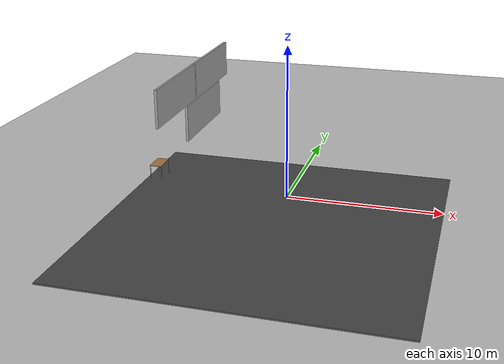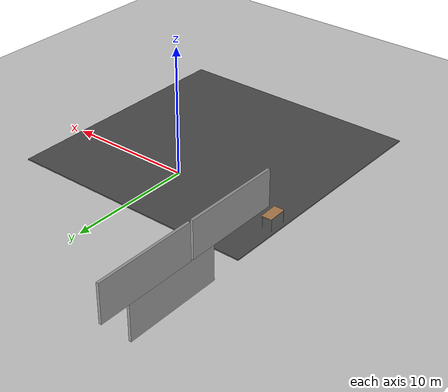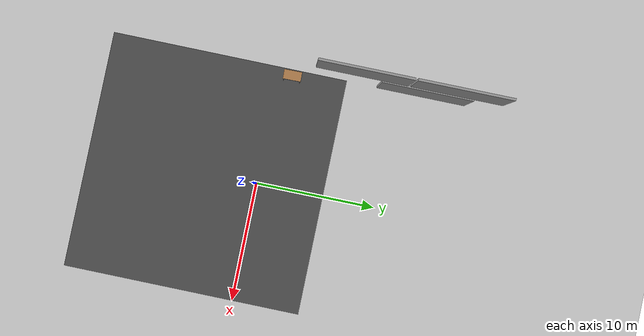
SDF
<sdf version="1.6">
 <world name="default">
  <model name="asphalt_plane">
   <static>1</static>
   <link name="link">
    <collision name="collision"><geometry><box><size>20 20 0.1</size></box></geometry></collision>
    <visual name="visual">
     <cast_shadows>0</cast_shadows>
     <geometry><box><size>20 20 0.1</size></box></geometry>
     <material>
      <script>
       <uri>model://asphalt_plane/materials/scripts</uri>
       <uri>model://asphalt_plane/materials/textures</uri>
       <name>vrc/asphalt</name>
      </script>
     </material>
    </visual>
   </link>
   <pose>0.016282 -4.35292 0 0 -0 0</pose>
  </model>
  <model name="ground_plane">
   <static>1</static>
   <link name="link">
    <collision name="collision">
     <geometry><plane><normal>0 0 1</normal><size>100 100</size></plane></geometry>
     <surface>
      <contact><collide_bitmask>65535</collide_bitmask></contact>
      <friction><ode><mu>100</mu><mu2>50</mu2></ode></friction>
     </surface>
    </collision>
    <visual name="visual">
     <cast_shadows>0</cast_shadows>
     <geometry><plane><normal>0 0 1</normal><size>100 100</size></plane></geometry>
     <material>
      <script><uri>file://media/materials/scripts/gazebo.material</uri><name>Gazebo/Grey</name></script>
     </material>
    </visual>
   </link>
   <pose>-1.27431 2.91806 0 0 -0 0</pose>
  </model>
  <model name="grey_wall_clone_0">
   <static>1</static>
   <link name="link">
    <pose>0 0 1.4 0 -0 0</pose>
    <collision name="collision"><geometry><box><size>7.5 0.2 2.8</size></box></geometry></collision>
    <visual name="visual">
     <cast_shadows>0</cast_shadows>
     <geometry><box><size>7.5 0.2 2.8</size></box></geometry>
     <material>
      <script>
       <uri>model://grey_wall/materials/scripts</uri>
       <uri>model://grey_wall/materials/textures</uri>
       <name>vrc/grey_wall</name>
      </script>
     </material>
    </visual>
   </link>
   <pose>-10.0463 11.9758 0 0 -0 1.5731</pose>
  </model>
  <model name="table">
   <static>1</static>
   <link name="link">
    <collision name="surface">
     <pose>0 0 1 0 -0 0</pose>
     <geometry><box><size>1.5 0.8 0.03</size></box></geometry>
     <surface><friction><ode><mu>0.6</mu><mu2>0.6</mu2></ode></friction></surface>
    </collision>
    <visual name="visual1">
     <pose>0 0 1 0 -0 0</pose>
     <geometry><box><size>1.5 0.8 0.03</size></box></geometry>
     <material>
      <script><uri>file://media/materials/scripts/gazebo.material</uri><name>Gazebo/Wood</name></script>
     </material>
    </visual>
    <collision name="front_left_leg">
     <pose>0.68 0.38 0.5 0 -0 0</pose>
     <geometry><cylinder><radius>0.02</radius><length>1</length></cylinder></geometry>
    </collision>
    <visual name="front_left_leg">
     <pose>0.68 0.38 0.5 0 -0 0</pose>
     <geometry><cylinder><radius>0.02</radius><length>1</length></cylinder></geometry>
     <material>
      <script><uri>file://media/materials/scripts/gazebo.material</uri><name>Gazebo/Grey</name></script>
     </material>
    </visual>
    <collision name="front_right_leg">
     <pose>0.68 -0.38 0.5 0 -0 0</pose>
     <geometry><cylinder><radius>0.02</radius><length>1</length></cylinder></geometry>
    </collision>
    <visual name="front_right_leg">
     <pose>0.68 -0.38 0.5 0 -0 0</pose>
     <geometry><cylinder><radius>0.02</radius><length>1</length></cylinder></geometry>
     <material>
      <script><uri>file://media/materials/scripts/gazebo.material</uri><name>Gazebo/Grey</name></script>
     </material>
    </visual>
    <collision name="back_right_leg">
     <pose>-0.68 -0.38 0.5 0 -0 0</pose>
     <geometry><cylinder><radius>0.02</radius><length>1</length></cylinder></geometry>
    </collision>
    <visual name="back_right_leg">
     <pose>-0.68 -0.38 0.5 0 -0 0</pose>
     <geometry><cylinder><radius>0.02</radius><length>1</length></cylinder></geometry>
     <material>
      <script><uri>file://media/materials/scripts/gazebo.material</uri><name>Gazebo/Grey</name></script>
     </material>
    </visual>
    <collision name="back_left_leg">
     <pose>-0.68 0.38 0.5 0 -0 0</pose>
     <geometry><cylinder><radius>0.02</radius><length>1</length></cylinder></geometry>
    </collision>
    <visual name="back_left_leg">
     <pose>-0.68 0.38 0.5 0 -0 0</pose>
     <geometry><cylinder><radius>0.02</radius><length>1</length></cylinder></geometry>
     <material>
      <script><uri>file://media/materials/scripts/gazebo.material</uri><name>Gazebo/Grey</name></script>
     </material>
    </visual>
   </link>
   <pose>-9.32133 1.09323 0.018125 -0.000255 -0.011983 -1.54953</pose>
  </model>
  <model name="grey_wall_clone_2_clone_clone_2">
   <static>1</static>
   <link name="link">
    <pose>0 0 1.4 0 -0 0</pose>
    <collision name="collision"><geometry><box><size>7.5 0.2 2.8</size></box></geometry></collision>
    <visual name="visual">
     <cast_shadows>0</cast_shadows>
     <geometry><box><size>7.5 0.2 2.8</size></box></geometry>
     <material>
      <script>
       <uri>model://grey_wall/materials/scripts</uri>
       <uri>model://grey_wall/materials/textures</uri>
       <name>vrc/grey_wall</name>
      </script>
     </material>
    </visual>
   </link>
   <pose>-10.1353 6.56368 2.80072 0 -0 1.5731</pose>
  </model>
  <model name="grey_wall_clone_2_clone_clone_3">
   <static>1</static>
   <link name="link">
    <pose>0 0 1.4 0 -0 0</pose>
    <collision name="collision"><geometry><box><size>7.5 0.2 2.8</size></box></geometry></collision>
    <visual name="visual">
     <cast_shadows>0</cast_shadows>
     <geometry><box><size>7.5 0.2 2.8</size></box></geometry>
     <material>
      <script>
       <uri>model://grey_wall/materials/scripts</uri>
       <uri>model://grey_wall/materials/textures</uri>
       <name>vrc/grey_wall</name>
      </script>
     </material>
    </visual>
   </link>
   <pose>-10.1594 14.2685 2.80072 0 -0 1.5731</pose>
  </model>
 </world>
</sdf>
